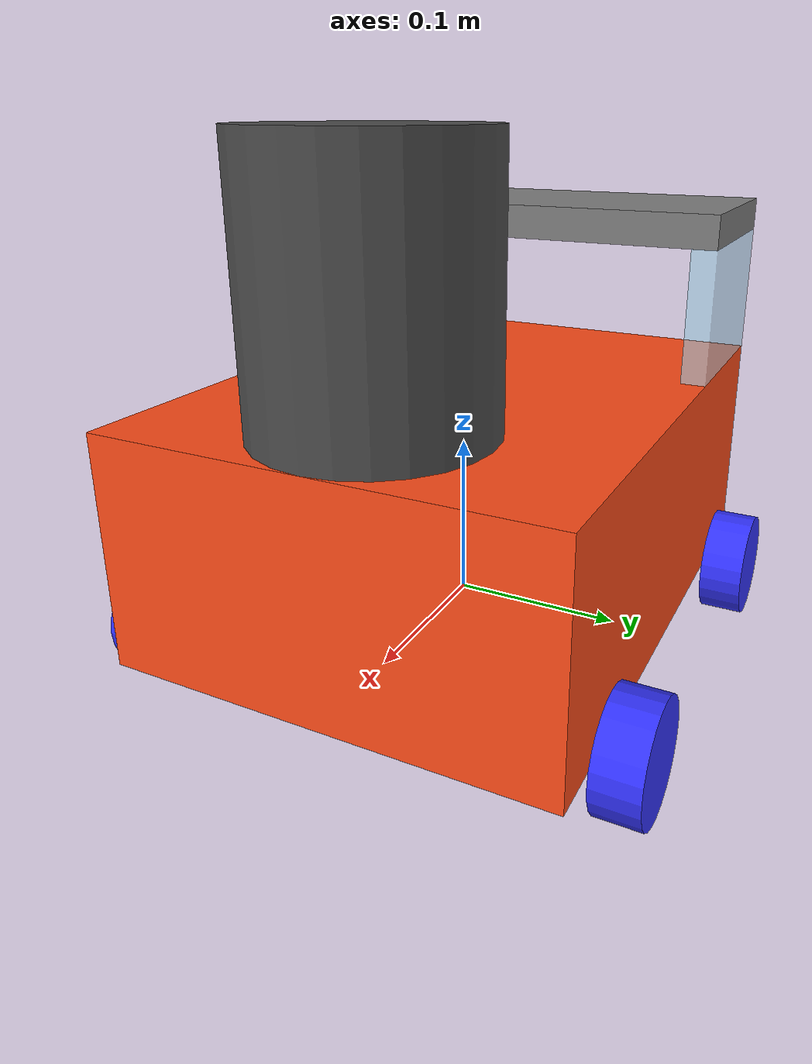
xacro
<?xml version="1.0" ?>
<robot name='robot' xmlns:xacro="http://ros.org/wiki/xacro">
  <xacro:include filename="$(find robot_description)/urdf/gazebo.urdf.xacro" />

  <!-- Properties -->
  <xacro:property name="chassis_length" value="0.335"/>
  <xacro:property name="chassis_width" value="0.265"/>
  <xacro:property name="chassis_height" value="0.138"/>

  <xacro:property name="wheel_radius" value="0.033"/>
  <xacro:property name="wheel_thickness" value="0.026"/>
  <xacro:property name="wheel_mass" value="0.05"/>

  <xacro:property name="front_wheel_offset_x" value="0.113"/>
  <xacro:property name="rear_wheel_offset_x" value="-0.113"/>
  <xacro:property name="wheel_offset_y" value="0.1485"/>

  <xacro:property name="mass" value="1.0"/>

  <!-- New properties for steam locomotive elements -->
  <xacro:property name="pipe_radius" value="${chassis_width/4}"/>
  <xacro:property name="pipe_height" value="0.15"/>
  <xacro:property name="cabin_wall_thickness" value="0.015"/>
  <xacro:property name="cabin_wall_height" value="0.08"/>
  <xacro:property name="cabin_roof_thickness" value="0.02"/>
  <xacro:property name="cabin_length" value="${chassis_length/3}"/>

  <!-- Materials -->
  <material name="white">
    <color rgba="1 1 1 1" />
  </material>
  <material name="orange">
    <color rgba="1 0.3 0.1 1"/>
  </material>
  <material name="blue">
    <color rgba="0.2 0.2 1 1"/>
  </material>
  <material name="black">
    <color rgba="0 0 0 1"/>
  </material>
  <material name="red">
    <color rgba="1 0 0 1"/>
  </material>
  <material name="gray">
    <color rgba="0.5 0.5 0.5 1"/>
  </material>
  <material name="dark_gray">
    <color rgba="0.3 0.3 0.3 1"/>
  </material>
  <material name="glass">
    <color rgba="0.7 0.9 1.0 0.6"/>
  </material>

  <!-- Main chassis link that contains the robot body -->
  <link name="base_link">
    <inertial>
      <origin xyz="0 0 ${chassis_height/2}" rpy="0 0 0"/>
      <mass value="${mass}" />
      <inertia
        ixx="${(1/12) * mass * (chassis_width*chassis_width+chassis_height*chassis_height)}"
        ixy="0.0"
        ixz="0.0"
        iyy="${(1/12) * mass * (chassis_length*chassis_length+chassis_height*chassis_height)}"
        iyz="0.0"
        izz="${(1/12) * mass * (chassis_length*chassis_length+chassis_width*chassis_width)}"
      />
    </inertial>
    <visual>
      <origin xyz="0 0 ${chassis_height/2}"/>
      <geometry>
        <box size="${chassis_length} ${chassis_width} ${chassis_height}"/>
      </geometry>
      <material name="orange"/>
    </visual>
    <collision>
      <origin xyz="0 0 ${chassis_height/2}"/>
      <geometry>
        <box size="${chassis_length} ${chassis_width} ${chassis_height}"/>
      </geometry>
    </collision>
  </link>

  <gazebo reference="base_link">
    <material>Gazebo/Orange</material>
  </gazebo>

  <link name="base_footprint">
  </link>

  <joint name="base_footprint_joint" type="fixed">
    <parent link="base_link"/>
    <child link="base_footprint"/>
    <origin xyz="0 0 -${chassis_height/2}" rpy="0 0 0"/>
  </joint>

  <!-- Steam Pipe (moved closer to cabin, front edge aligned with chassis front) -->
  <link name="steam_pipe">
    <inertial>
      <origin xyz="0 0 ${pipe_height/2}" rpy="0 0 0"/>
      <mass value="0.1"/>
      <inertia
        ixx="${(1/12) * 0.1 * (3*pipe_radius*pipe_radius + pipe_height*pipe_height)}"
        ixy="0.0"
        ixz="0.0"
        iyy="${(1/12) * 0.1 * (3*pipe_radius*pipe_radius + pipe_height*pipe_height)}"
        iyz="0.0"
        izz="${(1/2) * 0.1 * (pipe_radius*pipe_radius)}"
      />
    </inertial>
    <visual>
      <origin xyz="0 0 ${pipe_height/2}"/>
      <geometry>
        <cylinder radius="${pipe_radius}" length="${pipe_height}"/>
      </geometry>
      <material name="dark_gray"/>
    </visual>
    <collision>
      <origin xyz="0 0 ${pipe_height/2}"/>
      <geometry>
        <cylinder radius="${pipe_radius}" length="${pipe_height}"/>
      </geometry>
    </collision>
  </link>

  <joint name="steam_pipe_joint" type="fixed">
    <parent link="base_link"/>
    <child link="steam_pipe"/>
    <origin xyz="${chassis_length/2 - pipe_radius} 0 ${chassis_height}" rpy="0 0 0"/>
  </joint>

  <gazebo reference="steam_pipe">
    <material>Gazebo/DarkGray</material>
  </gazebo>

  <!-- Cabin Left Wall (full width at the edges) -->
  <link name="cabin_left_wall">
    <inertial>
      <origin xyz="0 0 ${cabin_wall_height/2}" rpy="0 0 0"/>
      <mass value="0.05"/>
      <inertia
        ixx="${(1/12) * 0.05 * (cabin_wall_thickness*cabin_wall_thickness + cabin_wall_height*cabin_wall_height)}"
        ixy="0.0"
        ixz="0.0"
        iyy="${(1/12) * 0.05 * (cabin_length*cabin_length + cabin_wall_height*cabin_wall_height)}"
        iyz="0.0"
        izz="${(1/12) * 0.05 * (cabin_length*cabin_length + cabin_wall_thickness*cabin_wall_thickness)}"
      />
    </inertial>
    <visual>
      <origin xyz="0 0 ${cabin_wall_height/2}"/>
      <geometry>
        <box size="${cabin_length} ${cabin_wall_thickness} ${cabin_wall_height}"/>
      </geometry>
      <material name="glass"/>
    </visual>
    <collision>
      <origin xyz="0 0 ${cabin_wall_height/2}"/>
      <geometry>
        <box size="${cabin_length} ${cabin_wall_thickness} ${cabin_wall_height}"/>
      </geometry>
    </collision>
  </link>

  <joint name="cabin_left_wall_joint" type="fixed">
    <parent link="base_link"/>
    <child link="cabin_left_wall"/>
    <origin xyz="${-chassis_length/3} ${chassis_width/2 - cabin_wall_thickness/2} ${chassis_height}" rpy="0 0 0"/>
  </joint>

  <gazebo reference="cabin_left_wall">
    <material>Gazebo/Blue</material>
  </gazebo>

  <!-- Cabin Right Wall (full width at the edges) -->
  <link name="cabin_right_wall">
    <inertial>
      <origin xyz="0 0 ${cabin_wall_height/2}" rpy="0 0 0"/>
      <mass value="0.05"/>
      <inertia
        ixx="${(1/12) * 0.05 * (cabin_wall_thickness*cabin_wall_thickness + cabin_wall_height*cabin_wall_height)}"
        ixy="0.0"
        ixz="0.0"
        iyy="${(1/12) * 0.05 * (cabin_length*cabin_length + cabin_wall_height*cabin_wall_height)}"
        iyz="0.0"
        izz="${(1/12) * 0.05 * (cabin_length*cabin_length + cabin_wall_thickness*cabin_wall_thickness)}"
      />
    </inertial>
    <visual>
      <origin xyz="0 0 ${cabin_wall_height/2}"/>
      <geometry>
        <box size="${cabin_length} ${cabin_wall_thickness} ${cabin_wall_height}"/>
      </geometry>
      <material name="glass"/>
    </visual>
    <collision>
      <origin xyz="0 0 ${cabin_wall_height/2}"/>
      <geometry>
        <box size="${cabin_length} ${cabin_wall_thickness} ${cabin_wall_height}"/>
      </geometry>
    </collision>
  </link>

  <joint name="cabin_right_wall_joint" type="fixed">
    <parent link="base_link"/>
    <child link="cabin_right_wall"/>
    <origin xyz="${-chassis_length/3} ${-chassis_width/2 + cabin_wall_thickness/2} ${chassis_height}" rpy="0 0 0"/>
  </joint>

  <gazebo reference="cabin_right_wall">
    <material>Gazebo/Blue</material>
  </gazebo>

  <!-- Cabin Roof (full width of chassis, touching the walls) -->
  <link name="cabin_roof">
    <inertial>
      <origin xyz="0 0 ${cabin_roof_thickness/2}" rpy="0 0 0"/>
      <mass value="0.1"/>
      <inertia
        ixx="${(1/12) * 0.1 * (cabin_roof_thickness*cabin_roof_thickness + chassis_width*chassis_width)}"
        ixy="0.0"
        ixz="0.0"
        iyy="${(1/12) * 0.1 * (cabin_length*cabin_length + chassis_width*chassis_width)}"
        iyz="0.0"
        izz="${(1/12) * 0.1 * (cabin_length*cabin_length + cabin_roof_thickness*cabin_roof_thickness)}"
      />
    </inertial>
    <visual>
      <origin xyz="0 0 ${cabin_roof_thickness/2}"/>
      <geometry>
        <box size="${cabin_length} ${chassis_width} ${cabin_roof_thickness}"/>
      </geometry>
      <material name="gray"/>
    </visual>
    <collision>
      <origin xyz="0 0 ${cabin_roof_thickness/2}"/>
      <geometry>
        <box size="${cabin_length} ${chassis_width} ${cabin_roof_thickness}"/>
      </geometry>
    </collision>
  </link>

  <joint name="cabin_roof_joint" type="fixed">
    <parent link="base_link"/>
    <child link="cabin_roof"/>
    <!-- Adjusted to ensure roof touches the walls -->
    <origin xyz="${-chassis_length/3} 0 ${chassis_height + cabin_wall_height}" rpy="0 0 0"/>
  </joint>

  <gazebo reference="cabin_roof">
    <material>Gazebo/Gray</material>
  </gazebo>

  <!-- Wheels (unchanged) -->
  <!-- Front Left Wheel -->
  <joint name="front_left_wheel_joint" type="continuous">
    <parent link="base_link"/>
    <child link="front_left_wheel"/>
    <origin xyz="${front_wheel_offset_x} ${wheel_offset_y} 0" rpy="0 0 0" />
    <axis xyz="0 1 0"/>
  </joint>

  <link name="front_left_wheel">
    <visual>
      <origin xyz="0 0 0" rpy="${pi/2} 0 0"/>
      <geometry>
        <cylinder radius="${wheel_radius}" length="${wheel_thickness}"/>
      </geometry>
      <material name="blue"/>
    </visual>
    <collision>
      <origin xyz="0 0 0" rpy="${pi/2} 0 0"/>
      <geometry>
        <cylinder radius="${wheel_radius}" length="${wheel_thickness}"/>
      </geometry>
    </collision>
    <inertial>
      <origin xyz="0 0 0" rpy="0 0 0"/>
      <mass value="${wheel_mass}" />
      <inertia
        ixx="${(1/12) * wheel_mass * (3*wheel_radius*wheel_radius + wheel_thickness*wheel_thickness)}"
        ixy="0.0"
        ixz="0.0"
        iyy="${(1/12) * wheel_mass * (3*wheel_radius*wheel_radius + wheel_thickness*wheel_thickness)}"
        iyz="0.0"
        izz="${(1/2) * wheel_mass * (wheel_radius*wheel_radius)}"
      />
    </inertial>
  </link>

  <gazebo reference="front_left_wheel">
    <material>Gazebo/Blue</material>
  </gazebo>

  <!-- Front Right Wheel -->
  <joint name="front_right_wheel_joint" type="continuous">
    <parent link="base_link"/>
    <child link="front_right_wheel"/>
    <origin xyz="${front_wheel_offset_x} ${-wheel_offset_y} 0" rpy="0 0 0" />
    <axis xyz="0 1 0"/>
  </joint>

  <link name="front_right_wheel">
    <visual>
      <origin xyz="0 0 0" rpy="${pi/2} 0 0"/>
      <geometry>
        <cylinder radius="${wheel_radius}" length="${wheel_thickness}"/>
      </geometry>
      <material name="blue"/>
    </visual>
    <collision>
      <origin xyz="0 0 0" rpy="${pi/2} 0 0"/>
      <geometry>
        <cylinder radius="${wheel_radius}" length="${wheel_thickness}"/>
      </geometry>
    </collision>
    <inertial>
      <origin xyz="0 0 0" rpy="0 0 0"/>
      <mass value="${wheel_mass}" />
      <inertia
        ixx="${(1/12) * wheel_mass * (3*wheel_radius*wheel_radius + wheel_thickness*wheel_thickness)}"
        ixy="0.0"
        ixz="0.0"
        iyy="${(1/12) * wheel_mass * (3*wheel_radius*wheel_radius + wheel_thickness*wheel_thickness)}"
        iyz="0.0"
        izz="${(1/2) * wheel_mass * (wheel_radius*wheel_radius)}"
      />
    </inertial>
  </link>

  <gazebo reference="front_right_wheel">
    <material>Gazebo/Blue</material>
  </gazebo>

  <!-- Rear Left Wheel -->
  <joint name="rear_left_wheel_joint" type="continuous">
    <parent link="base_link"/>
    <child link="rear_left_wheel"/>
    <origin xyz="${rear_wheel_offset_x} ${wheel_offset_y} 0" rpy="0 0 0" />
    <axis xyz="0 1 0"/>
  </joint>

  <link name="rear_left_wheel">
    <visual>
      <origin xyz="0 0 0" rpy="${pi/2} 0 0"/>
      <geometry>
        <cylinder radius="${wheel_radius}" length="${wheel_thickness}"/>
      </geometry>
      <material name="blue"/>
    </visual>
    <collision>
      <origin xyz="0 0 0" rpy="${pi/2} 0 0"/>
      <geometry>
        <cylinder radius="${wheel_radius}" length="${wheel_thickness}"/>
      </geometry>
    </collision>
    <inertial>
      <origin xyz="0 0 0" rpy="0 0 0"/>
      <mass value="${wheel_mass}" />
      <inertia
        ixx="${(1/12) * wheel_mass * (3*wheel_radius*wheel_radius + wheel_thickness*wheel_thickness)}"
        ixy="0.0"
        ixz="0.0"
        iyy="${(1/12) * wheel_mass * (3*wheel_radius*wheel_radius + wheel_thickness*wheel_thickness)}"
        iyz="0.0"
        izz="${(1/2) * wheel_mass * (wheel_radius*wheel_radius)}"
      />
    </inertial>
  </link>

  <gazebo reference="rear_left_wheel">
    <material>Gazebo/Blue</material>
  </gazebo>

  <!-- Rear Right Wheel -->
  <joint name="rear_right_wheel_joint" type="continuous">
    <parent link="base_link"/>
    <child link="rear_right_wheel"/>
    <origin xyz="${rear_wheel_offset_x} ${-wheel_offset_y} 0" rpy="0 0 0" />
    <axis xyz="0 1 0"/>
  </joint>

  <link name="rear_right_wheel">
    <visual>
      <origin xyz="0 0 0" rpy="${pi/2} 0 0"/>
      <geometry>
        <cylinder radius="${wheel_radius}" length="${wheel_thickness}"/>
      </geometry>
      <material name="blue"/>
    </visual>
    <collision>
      <origin xyz="0 0 0" rpy="${pi/2} 0 0"/>
      <geometry>
        <cylinder radius="${wheel_radius}" length="${wheel_thickness}"/>
      </geometry>
    </collision>
    <inertial>
      <origin xyz="0 0 0" rpy="0 0 0"/>
      <mass value="${wheel_mass}" />
      <inertia
        ixx="${(1/12) * wheel_mass * (3*wheel_radius*wheel_radius + wheel_thickness*wheel_thickness)}"
        ixy="0.0"
        ixz="0.0"
        iyy="${(1/12) * wheel_mass * (3*wheel_radius*wheel_radius + wheel_thickness*wheel_thickness)}"
        iyz="0.0"
        izz="${(1/2) * wheel_mass * (wheel_radius*wheel_radius)}"
      />
    </inertial>
  </link>

  <gazebo reference="rear_right_wheel">
    <material>Gazebo/Blue</material>
  </gazebo>

</robot>
